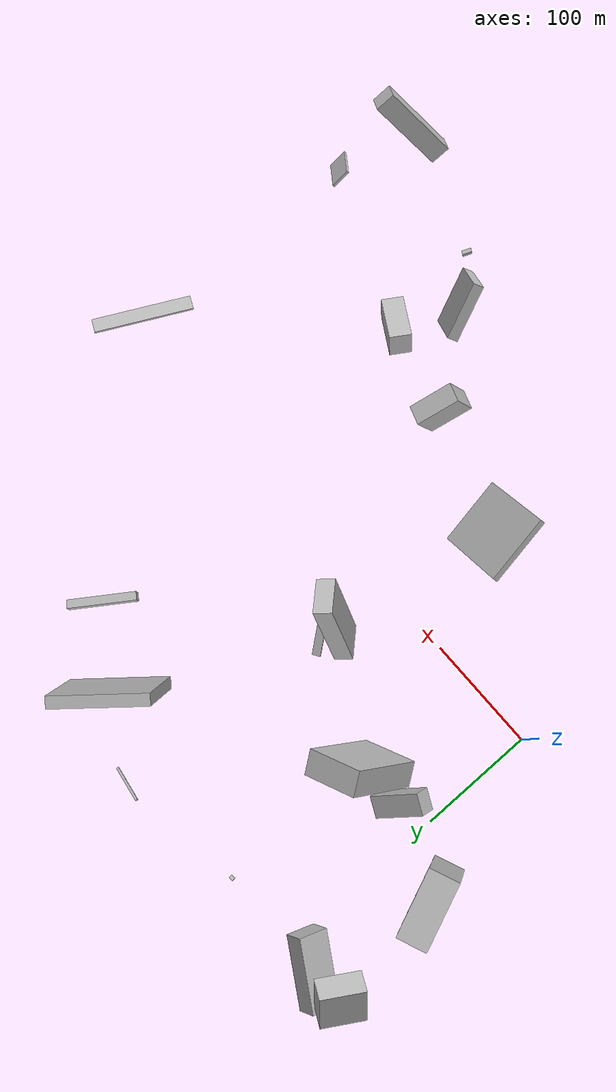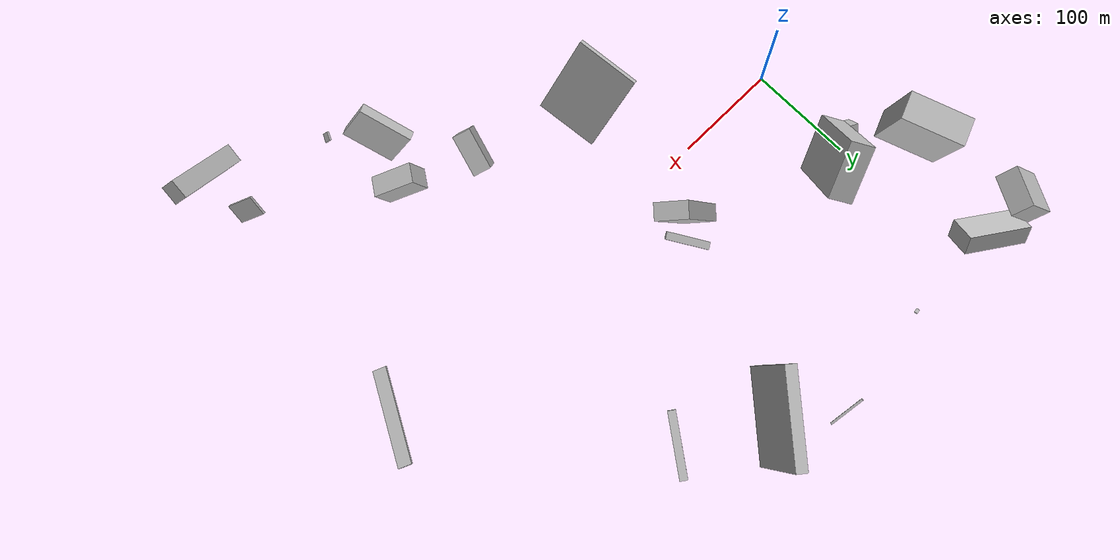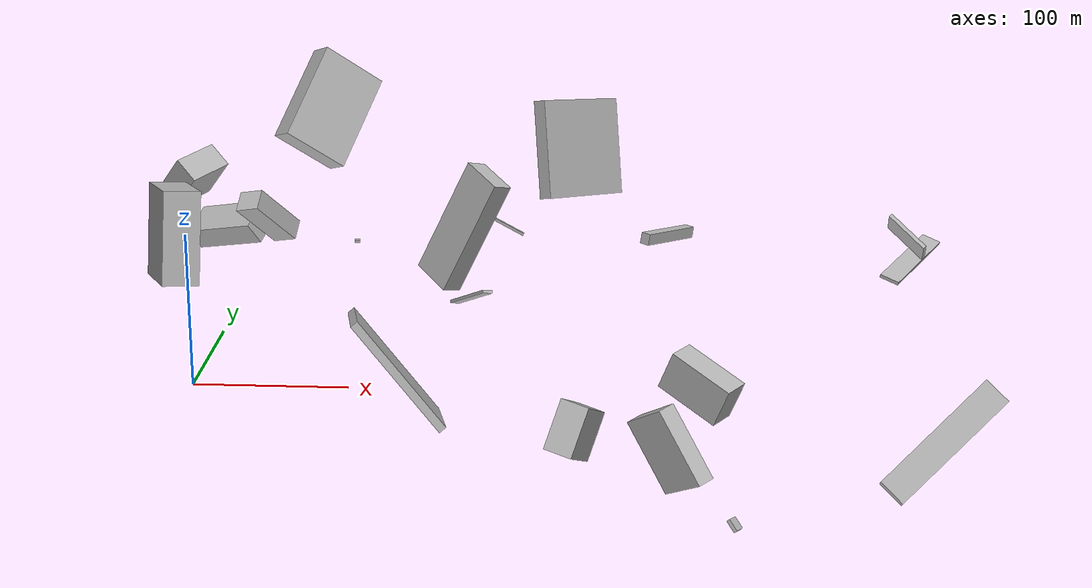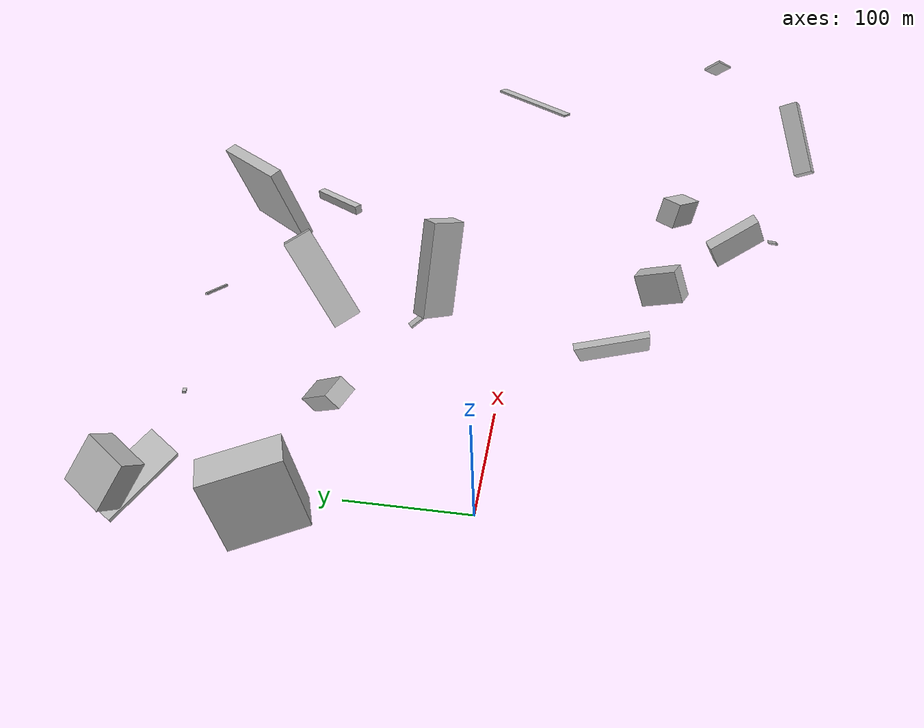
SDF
<sdf version="1.6">
 <world name="default">
  <scene>
   <sky><clouds><speed>12</speed></clouds></sky>
   <ambient>0.4 0.4 0.4 1</ambient>
   <background>0.7 0.7 0.7 1</background>
   <shadows>1</shadows>
  </scene>
  <gravity>0 0 -9.8066</gravity>
  <magnetic_field>6e-06 2.3e-05 -4.2e-05</magnetic_field>
  <physics default="0" name="default_physics" type="ode">
   <ode>
    <solver>
     <type>quick</type>
     <iters>10</iters>
     <sor>1.0</sor>
     <use_dynamic_moi_rescaling>0</use_dynamic_moi_rescaling>
    </solver>
    <constraints>
     <cfm>0</cfm>
     <erp>0.2</erp>
     <contact_max_correcting_vel>100</contact_max_correcting_vel>
     <contact_surface_layer>0.001</contact_surface_layer>
    </constraints>
   </ode>
   <max_step_size>0.004</max_step_size>
   <real_time_factor>1</real_time_factor>
   <real_time_update_rate>250</real_time_update_rate>
  </physics>
  <light name="sun" type="directional">
   <pose>0 0 10 0 0 0</pose>
   <diffuse>0.8 0.8 0.8 1</diffuse>
   <specular>0.2 0.2 0.2 1</specular>
   <attenuation>
    <range>1000</range>
    <constant>0.9</constant>
    <linear>0.01</linear>
    <quadratic>0.001</quadratic>
   </attenuation>
   <direction>-0.5 0.1 -0.9</direction>
  </light>
  <model name="building_1">
   <static>0</static>
   <pose>-17.67344410483077 249.94678782258222 25.614851467664202 0.5754575011951223 -0.2370933090637843 -0.5487427134817224</pose>
   <link name="link">
    <gravity>0</gravity>
    <pose>0 0 9.0 0 0 0</pose>
    <collision name="collision"><geometry><box><size>63 26 18</size></box></geometry></collision>
    <visual name="visual">
     <cast_shadows>0</cast_shadows>
     <geometry><box><size>63 26 18</size></box></geometry>
     <material>
      <script>
       <uri>model://HANNAS_wall/materials/scripts</uri>
       <uri>model://HANNAS_wall/materials/textures</uri>
       <name>vrc/HANNAS_wall</name>
      </script>
     </material>
    </visual>
   </link>
  </model>
  <model name="building_2">
   <static>0</static>
   <pose>136.56438307583224 -61.95460834360893 42.24900435769807 1.326652543870489 -0.6437650051755907 0.3153811077426261</pose>
   <link name="link">
    <gravity>0</gravity>
    <pose>0 0 29.5 0 0 0</pose>
    <collision name="collision"><geometry><box><size>5 80 59</size></box></geometry></collision>
    <visual name="visual">
     <cast_shadows>0</cast_shadows>
     <geometry><box><size>5 80 59</size></box></geometry>
     <material>
      <script>
       <uri>model://HANNAS_wall/materials/scripts</uri>
       <uri>model://HANNAS_wall/materials/textures</uri>
       <name>vrc/HANNAS_wall</name>
      </script>
     </material>
    </visual>
   </link>
  </model>
  <model name="building_3">
   <static>0</static>
   <pose>312.4351878469439 -148.33508716167776 61.3123885072237 1.5628904203114258 -0.4045720210323732 2.5794235203997484</pose>
   <link name="link">
    <gravity>0</gravity>
    <pose>0 0 9.0 0 0 0</pose>
    <collision name="collision"><geometry><box><size>39 23 18</size></box></geometry></collision>
    <visual name="visual">
     <cast_shadows>0</cast_shadows>
     <geometry><box><size>39 23 18</size></box></geometry>
     <material>
      <script>
       <uri>model://HANNAS_wall/materials/scripts</uri>
       <uri>model://HANNAS_wall/materials/textures</uri>
       <name>vrc/HANNAS_wall</name>
      </script>
     </material>
    </visual>
   </link>
  </model>
  <model name="building_4">
   <static>0</static>
   <pose>405.4147253333999 -266.2935888018865 55.022150675164106 0.6066465334040504 -0.6445707921401131 2.634623857346129</pose>
   <link name="link">
    <gravity>0</gravity>
    <pose>0 0 36.0 0 0 0</pose>
    <collision name="collision"><geometry><box><size>15 17 72</size></box></geometry></collision>
    <visual name="visual">
     <cast_shadows>0</cast_shadows>
     <geometry><box><size>15 17 72</size></box></geometry>
     <material>
      <script>
       <uri>model://HANNAS_wall/materials/scripts</uri>
       <uri>model://HANNAS_wall/materials/textures</uri>
       <name>vrc/HANNAS_wall</name>
      </script>
     </material>
    </visual>
   </link>
  </model>
  <model name="building_5">
   <static>0</static>
   <pose>170.848432124722 64.72515633211168 40.41614668040961 -2.041482352715852 1.0843595998066524 -1.425344833224889</pose>
   <link name="link">
    <gravity>0</gravity>
    <pose>0 0 3.5 0 0 0</pose>
    <collision name="collision"><geometry><box><size>2 43 7</size></box></geometry></collision>
    <visual name="visual">
     <cast_shadows>0</cast_shadows>
     <geometry><box><size>2 43 7</size></box></geometry>
     <material>
      <script>
       <uri>model://HANNAS_wall/materials/scripts</uri>
       <uri>model://HANNAS_wall/materials/textures</uri>
       <name>vrc/HANNAS_wall</name>
      </script>
     </material>
    </visual>
   </link>
  </model>
  <model name="building_6">
   <static>0</static>
   <pose>446.74190157669557 12.45606789523354 90.29471022592631 2.971173065385929 1.277265284415913 2.5168243040641687</pose>
   <link name="link">
    <gravity>0</gravity>
    <pose>0 0 6.0 0 0 0</pose>
    <collision name="collision"><geometry><box><size>2 80 12</size></box></geometry></collision>
    <visual name="visual">
     <cast_shadows>0</cast_shadows>
     <geometry><box><size>2 80 12</size></box></geometry>
     <material>
      <script>
       <uri>model://HANNAS_wall/materials/scripts</uri>
       <uri>model://HANNAS_wall/materials/textures</uri>
       <name>vrc/HANNAS_wall</name>
      </script>
     </material>
    </visual>
   </link>
  </model>
  <model name="building_7">
   <static>0</static>
   <pose>243.89648199989895 213.09718018521585 68.8467947524647 -0.22187458593336573 0.14654374907363427 0.8727663279116387</pose>
   <link name="link">
    <gravity>0</gravity>
    <pose>0 0 35.0 0 0 0</pose>
    <collision name="collision"><geometry><box><size>80 10 70</size></box></geometry></collision>
    <visual name="visual">
     <cast_shadows>0</cast_shadows>
     <geometry><box><size>80 10 70</size></box></geometry>
     <material>
      <script>
       <uri>model://HANNAS_wall/materials/scripts</uri>
       <uri>model://HANNAS_wall/materials/textures</uri>
       <name>vrc/HANNAS_wall</name>
      </script>
     </material>
    </visual>
   </link>
  </model>
  <model name="building_8">
   <static>0</static>
   <pose>322.1915086433747 205.11665367252635 45.56714111895998 1.4333254295659688 0.0789908598891484 -0.6227587171218183</pose>
   <link name="link">
    <gravity>0</gravity>
    <pose>0 0 28.5 0 0 0</pose>
    <collision name="collision"><geometry><box><size>7 8 57</size></box></geometry></collision>
    <visual name="visual">
     <cast_shadows>0</cast_shadows>
     <geometry><box><size>7 8 57</size></box></geometry>
     <material>
      <script>
       <uri>model://HANNAS_wall/materials/scripts</uri>
       <uri>model://HANNAS_wall/materials/textures</uri>
       <name>vrc/HANNAS_wall</name>
      </script>
     </material>
    </visual>
   </link>
  </model>
  <model name="building_9">
   <static>0</static>
   <pose>184.26715916724854 263.85012167986383 31.556909145610746 1.505830156144779 -1.103976471672731 -0.05047207397007701</pose>
   <link name="link">
    <gravity>0</gravity>
    <pose>0 0 1.0 0 0 0</pose>
    <collision name="collision"><geometry><box><size>2 34 2</size></box></geometry></collision>
    <visual name="visual">
     <cast_shadows>0</cast_shadows>
     <geometry><box><size>2 34 2</size></box></geometry>
     <material>
      <script>
       <uri>model://HANNAS_wall/materials/scripts</uri>
       <uri>model://HANNAS_wall/materials/textures</uri>
       <name>vrc/HANNAS_wall</name>
      </script>
     </material>
    </visual>
   </link>
  </model>
  <model name="building_10">
   <static>0</static>
   <pose>71.28895428416902 248.76666946614148 20.699702850670608 -2.083269606312005 -1.4427733033408343 -0.8921512945095815</pose>
   <link name="link">
    <gravity>0</gravity>
    <pose>0 0 2.0 0 0 0</pose>
    <collision name="collision"><geometry><box><size>2 3 4</size></box></geometry></collision>
    <visual name="visual">
     <cast_shadows>0</cast_shadows>
     <geometry><box><size>2 3 4</size></box></geometry>
     <material>
      <script>
       <uri>model://HANNAS_wall/materials/scripts</uri>
       <uri>model://HANNAS_wall/materials/textures</uri>
       <name>vrc/HANNAS_wall</name>
      </script>
     </material>
    </visual>
   </link>
  </model>
  <model name="building_11">
   <static>0</static>
   <pose>153.07079663919194 59.261797769911 55.003893229224005 -0.2620045366688685 0.3685765275338217 -0.8262168738406629</pose>
   <link name="link">
    <gravity>0</gravity>
    <pose>0 0 40.0 0 0 0</pose>
    <collision name="collision"><geometry><box><size>29 15 80</size></box></geometry></collision>
    <visual name="visual">
     <cast_shadows>0</cast_shadows>
     <geometry><box><size>29 15 80</size></box></geometry>
     <material>
      <script>
       <uri>model://HANNAS_wall/materials/scripts</uri>
       <uri>model://HANNAS_wall/materials/textures</uri>
       <name>vrc/HANNAS_wall</name>
      </script>
     </material>
    </visual>
   </link>
  </model>
  <model name="building_12">
   <static>0</static>
   <pose>239.18408913908098 -126.90828237281288 29.70441071577766 2.023773955563433 -1.08687272474863 0.8157744312113211</pose>
   <link name="link">
    <gravity>0</gravity>
    <pose>0 0 8.5 0 0 0</pose>
    <collision name="collision"><geometry><box><size>30 39 17</size></box></geometry></collision>
    <visual name="visual">
     <cast_shadows>0</cast_shadows>
     <geometry><box><size>30 39 17</size></box></geometry>
     <material>
      <script>
       <uri>model://HANNAS_wall/materials/scripts</uri>
       <uri>model://HANNAS_wall/materials/textures</uri>
       <name>vrc/HANNAS_wall</name>
      </script>
     </material>
    </visual>
   </link>
  </model>
  <model name="building_13">
   <static>0</static>
   <pose>-30.36940731734008 116.2757175971222 61.13138487292624 -2.5557075561827887 -1.4003008413595037 1.379681639993377</pose>
   <link name="link">
    <gravity>0</gravity>
    <pose>0 0 29.5 0 0 0</pose>
    <collision name="collision"><geometry><box><size>66 26 59</size></box></geometry></collision>
    <visual name="visual">
     <cast_shadows>0</cast_shadows>
     <geometry><box><size>66 26 59</size></box></geometry>
     <material>
      <script>
       <uri>model://HANNAS_wall/materials/scripts</uri>
       <uri>model://HANNAS_wall/materials/textures</uri>
       <name>vrc/HANNAS_wall</name>
      </script>
     </material>
    </visual>
   </link>
  </model>
  <model name="building_14">
   <static>0</static>
   <pose>91.80134351574327 125.5647979787918 141.3688572108204 0.9283333750773767 -0.29655980114967034 -0.9372537033952587</pose>
   <link name="link">
    <gravity>0</gravity>
    <pose>0 0 23.0 0 0 0</pose>
    <collision name="collision"><geometry><box><size>20 66 46</size></box></geometry></collision>
    <visual name="visual">
     <cast_shadows>0</cast_shadows>
     <geometry><box><size>20 66 46</size></box></geometry>
     <material>
      <script>
       <uri>model://HANNAS_wall/materials/scripts</uri>
       <uri>model://HANNAS_wall/materials/textures</uri>
       <name>vrc/HANNAS_wall</name>
      </script>
     </material>
    </visual>
   </link>
  </model>
  <model name="building_15">
   <static>0</static>
   <pose>-41.80718551926325 239.70312926131703 64.5484832257243 0.819074808008183 0.12343462653101837 -2.1294999236922854</pose>
   <link name="link">
    <gravity>0</gravity>
    <pose>0 0 10.0 0 0 0</pose>
    <collision name="collision"><geometry><box><size>37 36 20</size></box></geometry></collision>
    <visual name="visual">
     <cast_shadows>0</cast_shadows>
     <geometry><box><size>37 36 20</size></box></geometry>
     <material>
      <script>
       <uri>model://HANNAS_wall/materials/scripts</uri>
       <uri>model://HANNAS_wall/materials/textures</uri>
       <name>vrc/HANNAS_wall</name>
      </script>
     </material>
    </visual>
   </link>
  </model>
  <model name="building_16">
   <static>0</static>
   <pose>295.0172078542833 -197.59995654509865 44.127259698422016 0.9965616440251955 -0.9746020132768402 2.6169055119025266</pose>
   <link name="link">
    <gravity>0</gravity>
    <pose>0 0 4.5 0 0 0</pose>
    <collision name="collision"><geometry><box><size>44 49 9</size></box></geometry></collision>
    <visual name="visual">
     <cast_shadows>0</cast_shadows>
     <geometry><box><size>44 49 9</size></box></geometry>
     <material>
      <script>
       <uri>model://HANNAS_wall/materials/scripts</uri>
       <uri>model://HANNAS_wall/materials/textures</uri>
       <name>vrc/HANNAS_wall</name>
      </script>
     </material>
    </visual>
   </link>
  </model>
  <model name="building_17">
   <static>0</static>
   <pose>332.48749162977094 -235.8748269182537 22.71452462548501 2.8282533978236084 0.7890500803457497 -0.6797444769159339</pose>
   <link name="link">
    <gravity>0</gravity>
    <pose>0 0 1.0 0 0 0</pose>
    <collision name="collision"><geometry><box><size>7 8 2</size></box></geometry></collision>
    <visual name="visual">
     <cast_shadows>0</cast_shadows>
     <geometry><box><size>7 8 2</size></box></geometry>
     <material>
      <script>
       <uri>model://HANNAS_wall/materials/scripts</uri>
       <uri>model://HANNAS_wall/materials/textures</uri>
       <name>vrc/HANNAS_wall</name>
      </script>
     </material>
    </visual>
   </link>
  </model>
  <model name="building_18">
   <static>0</static>
   <pose>421.3655376342039 -167.54030613050764 157.7127769868024 -2.3815816963218586 0.6726884356253557 1.453818379777954</pose>
   <link name="link">
    <gravity>0</gravity>
    <pose>0 0 1.0 0 0 0</pose>
    <collision name="collision"><geometry><box><size>16 25 2</size></box></geometry></collision>
    <visual name="visual">
     <cast_shadows>0</cast_shadows>
     <geometry><box><size>16 25 2</size></box></geometry>
     <material>
      <script>
       <uri>model://HANNAS_wall/materials/scripts</uri>
       <uri>model://HANNAS_wall/materials/textures</uri>
       <name>vrc/HANNAS_wall</name>
      </script>
     </material>
    </visual>
   </link>
  </model>
  <model name="building_19">
   <static>0</static>
   <pose>39.88246912932124 106.41036481035431 82.61003012094542 1.8993943678081222 0.810055766778305 -1.7740166411969804</pose>
   <link name="link">
    <gravity>0</gravity>
    <pose>0 0 9.0 0 0 0</pose>
    <collision name="collision"><geometry><box><size>14 45 18</size></box></geometry></collision>
    <visual name="visual">
     <cast_shadows>0</cast_shadows>
     <geometry><box><size>14 45 18</size></box></geometry>
     <material>
      <script>
       <uri>model://HANNAS_wall/materials/scripts</uri>
       <uri>model://HANNAS_wall/materials/textures</uri>
       <name>vrc/HANNAS_wall</name>
      </script>
     </material>
    </visual>
   </link>
  </model>
 </world>
</sdf>
